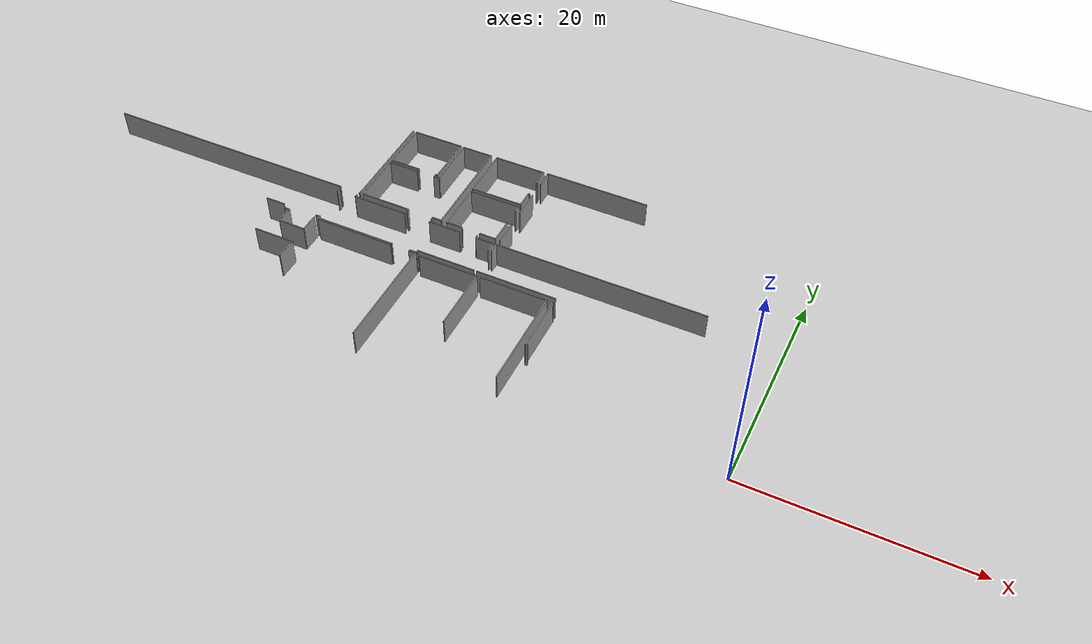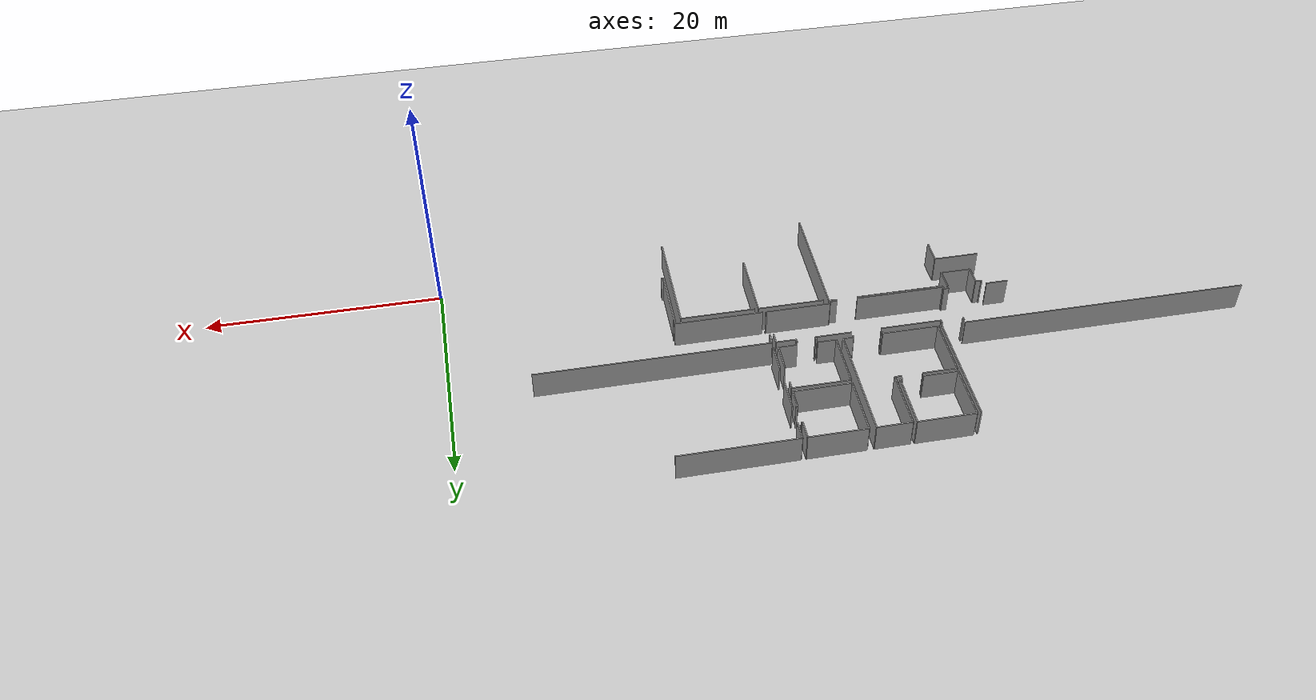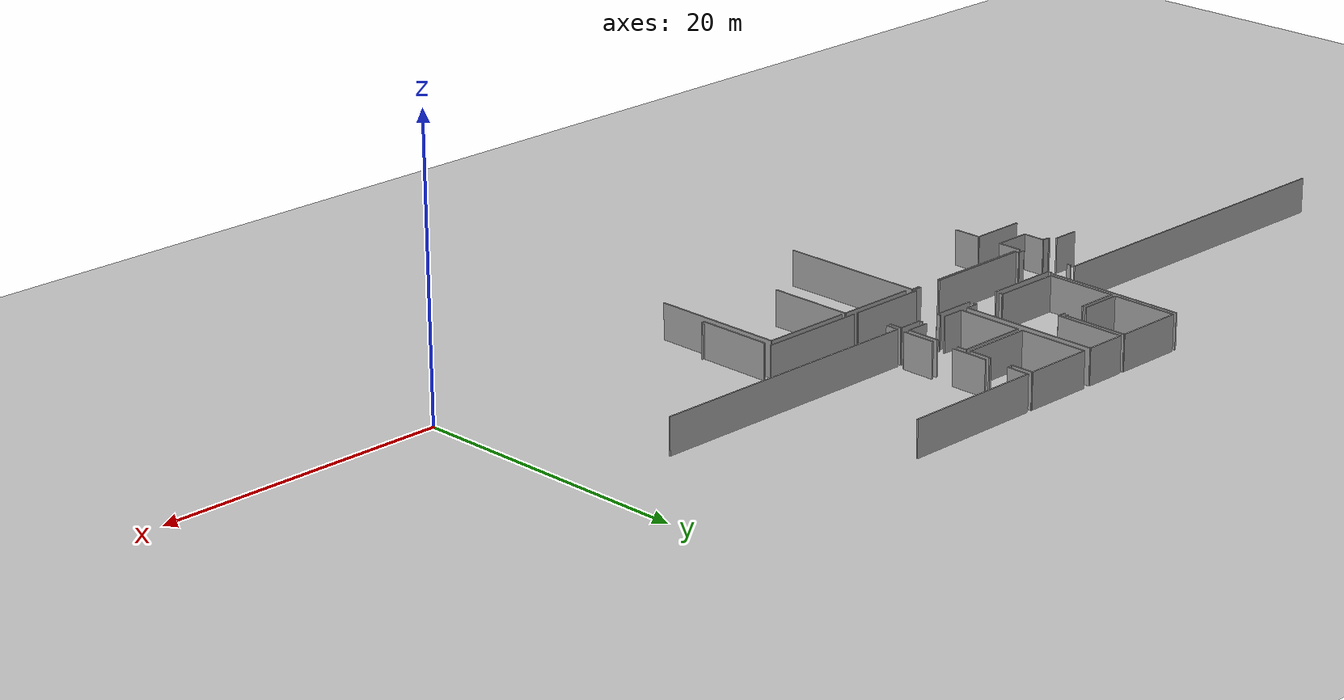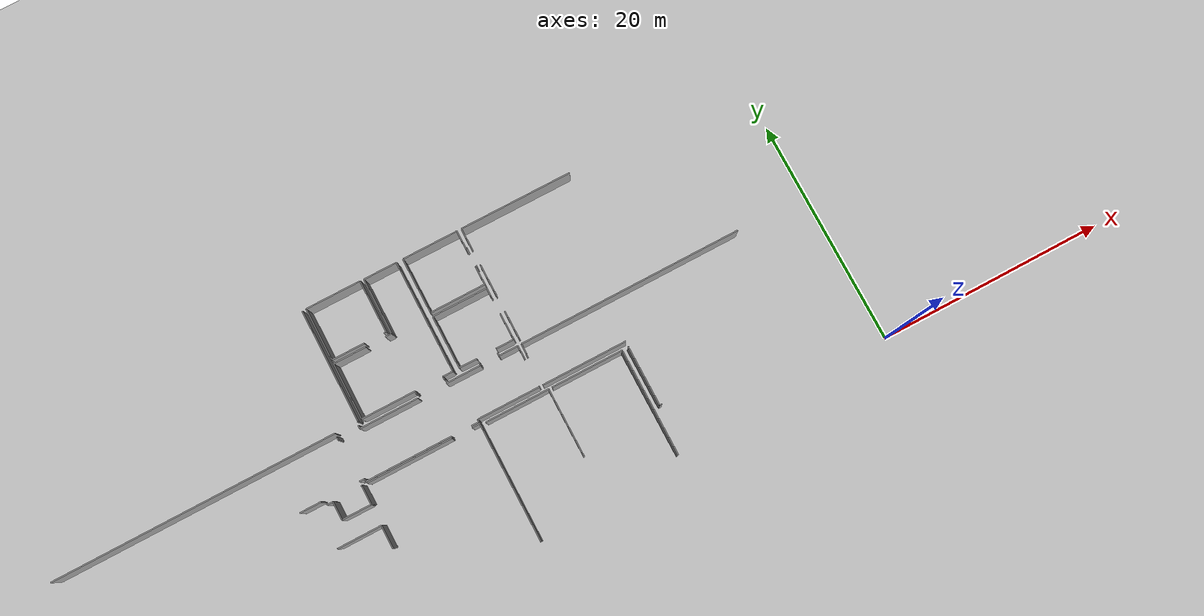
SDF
<sdf version="1.6">
 <world name="default">
  <model name="ground_plane">
   <static>1</static>
   <link name="link">
    <collision name="collision">
     <geometry><plane><normal>0 0 1</normal><size>100 100</size></plane></geometry>
     <surface><friction><ode><mu>100</mu><mu2>50</mu2></ode></friction></surface>
    </collision>
    <visual name="visual">
     <cast_shadows>0</cast_shadows>
     <geometry><plane><normal>0 0 1</normal><size>100 100</size></plane></geometry>
     <material>
      <script><uri>file://media/materials/scripts/gazebo.material</uri><name>Gazebo/Grey</name></script>
     </material>
    </visual>
   </link>
  </model>
  <model name="0510032194_A_40_1_102">
   <static>1</static>
   <link name="Wall_2">
    <collision name="Wall_2_Collision">
     <geometry><box><size>0.305095087969 0.1 2.5</size></box></geometry>
     <pose>0.152547543985 0 1.25 0 0 0</pose>
    </collision>
    <visual name="Wall_2_Visual">
     <pose>0.152547543985 0 1.25 0 0 0</pose>
     <geometry><box><size>0.305095087969 0.1 2.5</size></box></geometry>
     <material>
      <script><uri>file://media/materials/scripts/gazebo.material</uri><name>Gazebo/Grey</name></script>
      <ambient>1 1 1 1</ambient>
     </material>
    </visual>
    <pose>24.7901200041 -10.6450218651 0 0 0 1.57079632679</pose>
   </link>
   <link name="Wall_3">
    <collision name="Wall_3_Collision">
     <geometry><box><size>0.296577850097 0.1 2.5</size></box></geometry>
     <pose>0.148288925048 0 1.25 0 0 0</pose>
    </collision>
    <visual name="Wall_3_Visual">
     <pose>0.148288925048 0 1.25 0 0 0</pose>
     <geometry><box><size>0.296577850097 0.1 2.5</size></box></geometry>
     <material>
      <script><uri>file://media/materials/scripts/gazebo.material</uri><name>Gazebo/Grey</name></script>
      <ambient>1 1 1 1</ambient>
     </material>
    </visual>
    <pose>26.7179395912 -10.3399267772 0 0 0 -1.57079632679</pose>
   </link>
   <link name="Wall_4">
    <collision name="Wall_4_Collision">
     <geometry><box><size>5.16246313434 0.1 2.5</size></box></geometry>
     <pose>2.58123156717 0 1.25 0 0 0</pose>
    </collision>
    <visual name="Wall_4_Visual">
     <pose>2.58123156717 0 1.25 0 0 0</pose>
     <geometry><box><size>5.16246313434 0.1 2.5</size></box></geometry>
     <material>
      <script><uri>file://media/materials/scripts/gazebo.material</uri><name>Gazebo/Grey</name></script>
      <ambient>1 1 1 1</ambient>
     </material>
    </visual>
    <pose>26.7179395912 -10.6365046273 0 0 0 0.0</pose>
   </link>
   <link name="Wall_5">
    <collision name="Wall_5_Collision">
     <geometry><box><size>3.06912946202 0.1 2.5</size></box></geometry>
     <pose>1.53456473101 0 1.25 0 0 0</pose>
    </collision>
    <visual name="Wall_5_Visual">
     <pose>1.53456473101 0 1.25 0 0 0</pose>
     <geometry><box><size>3.06912946202 0.1 2.5</size></box></geometry>
     <material>
      <script><uri>file://media/materials/scripts/gazebo.material</uri><name>Gazebo/Grey</name></script>
      <ambient>1 1 1 1</ambient>
     </material>
    </visual>
    <pose>34.4265483576 -10.6365046273 0 0 0 0.0</pose>
   </link>
   <link name="Wall_6">
    <collision name="Wall_6_Collision">
     <geometry><box><size>0.26530560358 0.1 2.5</size></box></geometry>
     <pose>0.13265280179 0 1.25 0 0 0</pose>
    </collision>
    <visual name="Wall_6_Visual">
     <pose>0.13265280179 0 1.25 0 0 0</pose>
     <geometry><box><size>0.26530560358 0.1 2.5</size></box></geometry>
     <material>
      <script><uri>file://media/materials/scripts/gazebo.material</uri><name>Gazebo/Grey</name></script>
      <ambient>1 1 1 1</ambient>
     </material>
    </visual>
    <pose>37.4956778196 -10.6365046273 0 0 0 1.57079632679</pose>
   </link>
   <link name="Wall_7">
    <collision name="Wall_7_Collision">
     <geometry><box><size>0.273822841452 0.1 2.5</size></box></geometry>
     <pose>0.136911420726 0 1.25 0 0 0</pose>
    </collision>
    <visual name="Wall_7_Visual">
     <pose>0.136911420726 0 1.25 0 0 0</pose>
     <geometry><box><size>0.273822841452 0.1 2.5</size></box></geometry>
     <material>
      <script><uri>file://media/materials/scripts/gazebo.material</uri><name>Gazebo/Grey</name></script>
      <ambient>1 1 1 1</ambient>
     </material>
    </visual>
    <pose>39.136580901 -10.3711990237 0 0 0 -1.57079632679</pose>
   </link>
   <link name="Wall_8">
    <collision name="Wall_8_Collision">
     <geometry><box><size>1.70141360724 0.1 2.5</size></box></geometry>
     <pose>0.85070680362 0 1.25 0 0 0</pose>
    </collision>
    <visual name="Wall_8_Visual">
     <pose>0.85070680362 0 1.25 0 0 0</pose>
     <geometry><box><size>1.70141360724 0.1 2.5</size></box></geometry>
     <material>
      <script><uri>file://media/materials/scripts/gazebo.material</uri><name>Gazebo/Grey</name></script>
      <ambient>1 1 1 1</ambient>
     </material>
    </visual>
    <pose>39.136580901 -10.6450218651 0 0 0 0.0</pose>
   </link>
   <link name="Wall_9">
    <collision name="Wall_9_Collision">
     <geometry><box><size>0.956981592596 0.1 2.5</size></box></geometry>
     <pose>0.478490796298 0 1.25 0 0 0</pose>
    </collision>
    <visual name="Wall_9_Visual">
     <pose>0.478490796298 0 1.25 0 0 0</pose>
     <geometry><box><size>0.956981592596 0.1 2.5</size></box></geometry>
     <material>
      <script><uri>file://media/materials/scripts/gazebo.material</uri><name>Gazebo/Grey</name></script>
      <ambient>1 1 1 1</ambient>
     </material>
    </visual>
    <pose>40.8379945083 -10.6450218651 0 0 0 -1.57079632679</pose>
   </link>
   <link name="Wall_10">
    <collision name="Wall_10_Collision">
     <geometry><box><size>0.0672480423065 0.1 2.5</size></box></geometry>
     <pose>0.0336240211533 0 1.25 0 0 0</pose>
    </collision>
    <visual name="Wall_10_Visual">
     <pose>0.0336240211533 0 1.25 0 0 0</pose>
     <geometry><box><size>0.0672480423065 0.1 2.5</size></box></geometry>
     <material>
      <script><uri>file://media/materials/scripts/gazebo.material</uri><name>Gazebo/Grey</name></script>
      <ambient>1 1 1 1</ambient>
     </material>
    </visual>
    <pose>40.8379945083 -14.3127733143 0 0 0 -1.57079632679</pose>
   </link>
   <link name="Wall_11">
    <collision name="Wall_11_Collision">
     <geometry><box><size>5.53099257602 0.1 2.5</size></box></geometry>
     <pose>2.76549628801 0 1.25 0 0 0</pose>
    </collision>
    <visual name="Wall_11_Visual">
     <pose>2.76549628801 0 1.25 0 0 0</pose>
     <geometry><box><size>5.53099257602 0.1 2.5</size></box></geometry>
     <material>
      <script><uri>file://media/materials/scripts/gazebo.material</uri><name>Gazebo/Grey</name></script>
      <ambient>1 1 1 1</ambient>
     </material>
    </visual>
    <pose>40.8379945083 -14.3800213567 0 0 0 3.14159265359</pose>
   </link>
   <link name="Wall_12">
    <collision name="Wall_12_Collision">
     <geometry><box><size>0.224880504424 0.1 2.5</size></box></geometry>
     <pose>0.112440252212 0 1.25 0 0 0</pose>
    </collision>
    <visual name="Wall_12_Visual">
     <pose>0.112440252212 0 1.25 0 0 0</pose>
     <geometry><box><size>0.224880504424 0.1 2.5</size></box></geometry>
     <material>
      <script><uri>file://media/materials/scripts/gazebo.material</uri><name>Gazebo/Grey</name></script>
      <ambient>1 1 1 1</ambient>
     </material>
    </visual>
    <pose>35.3070019323 -14.3800213567 0 0 0 -1.57079632679</pose>
   </link>
   <link name="Wall_13">
    <collision name="Wall_13_Collision">
     <geometry><box><size>0.674260144412 0.1 2.5</size></box></geometry>
     <pose>0.337130072206 0 1.25 0 0 0</pose>
    </collision>
    <visual name="Wall_13_Visual">
     <pose>0.337130072206 0 1.25 0 0 0</pose>
     <geometry><box><size>0.674260144412 0.1 2.5</size></box></geometry>
     <material>
      <script><uri>file://media/materials/scripts/gazebo.material</uri><name>Gazebo/Grey</name></script>
      <ambient>1 1 1 1</ambient>
     </material>
    </visual>
    <pose>35.3070019323 -14.6049018611 0 0 0 3.14159265359</pose>
   </link>
   <link name="Wall_14">
    <collision name="Wall_14_Collision">
     <geometry><box><size>7.59521509204 0.1 2.5</size></box></geometry>
     <pose>3.79760754602 0 1.25 0 0 0</pose>
    </collision>
    <visual name="Wall_14_Visual">
     <pose>3.79760754602 0 1.25 0 0 0</pose>
     <geometry><box><size>7.59521509204 0.1 2.5</size></box></geometry>
     <material>
      <script><uri>file://media/materials/scripts/gazebo.material</uri><name>Gazebo/Grey</name></script>
      <ambient>1 1 1 1</ambient>
     </material>
    </visual>
    <pose>32.859503712 -14.6049018611 0 0 0 3.14159265359</pose>
   </link>
   <link name="Wall_15">
    <collision name="Wall_15_Collision">
     <geometry><box><size>0.237084307943 0.1 2.5</size></box></geometry>
     <pose>0.118542153971 0 1.25 0 0 0</pose>
    </collision>
    <visual name="Wall_15_Visual">
     <pose>0.118542153971 0 1.25 0 0 0</pose>
     <geometry><box><size>0.237084307943 0.1 2.5</size></box></geometry>
     <material>
      <script><uri>file://media/materials/scripts/gazebo.material</uri><name>Gazebo/Grey</name></script>
      <ambient>1 1 1 1</ambient>
     </material>
    </visual>
    <pose>25.26428862 -14.6049018611 0 0 0 1.57079632679</pose>
   </link>
   <link name="Wall_16">
    <collision name="Wall_16_Collision">
     <geometry><box><size>0.444930336622 0.1 2.5</size></box></geometry>
     <pose>0.222465168311 0 1.25 0 0 0</pose>
    </collision>
    <visual name="Wall_16_Visual">
     <pose>0.222465168311 0 1.25 0 0 0</pose>
     <geometry><box><size>0.444930336622 0.1 2.5</size></box></geometry>
     <material>
      <script><uri>file://media/materials/scripts/gazebo.material</uri><name>Gazebo/Grey</name></script>
      <ambient>1 1 1 1</ambient>
     </material>
    </visual>
    <pose>25.26428862 -14.3678175531 0 0 0 3.14159265359</pose>
   </link>
   <link name="Wall_17">
    <collision name="Wall_17_Collision">
     <geometry><box><size>1.86069866775 0.1 2.5</size></box></geometry>
     <pose>0.930349333876 0 1.25 0 0 0</pose>
    </collision>
    <visual name="Wall_17_Visual">
     <pose>0.930349333876 0 1.25 0 0 0</pose>
     <geometry><box><size>1.86069866775 0.1 2.5</size></box></geometry>
     <material>
      <script><uri>file://media/materials/scripts/gazebo.material</uri><name>Gazebo/Grey</name></script>
      <ambient>1 1 1 1</ambient>
     </material>
    </visual>
    <pose>21.4400488152 -14.3678175531 0 0 0 3.14159265359</pose>
   </link>
   <link name="Wall_21">
    <collision name="Wall_21_Collision">
     <geometry><box><size>10.0469083698 0.1 2.5</size></box></geometry>
     <pose>5.02345418489 0 1.25 0 0 0</pose>
    </collision>
    <visual name="Wall_21_Visual">
     <pose>5.02345418489 0 1.25 0 0 0</pose>
     <geometry><box><size>10.0469083698 0.1 2.5</size></box></geometry>
     <material>
      <script><uri>file://media/materials/scripts/gazebo.material</uri><name>Gazebo/Grey</name></script>
      <ambient>1 1 1 1</ambient>
     </material>
    </visual>
    <pose>26.8495118479 -0.0 0 0 0 -1.57079632679</pose>
   </link>
   <link name="Wall_22">
    <collision name="Wall_22_Collision">
     <geometry><box><size>0.0683921488864 0.1 2.5</size></box></geometry>
     <pose>0.0341960744432 0 1.25 0 0 0</pose>
    </collision>
    <visual name="Wall_22_Visual">
     <pose>0.0341960744432 0 1.25 0 0 0</pose>
     <geometry><box><size>0.0683921488864 0.1 2.5</size></box></geometry>
     <material>
      <script><uri>file://media/materials/scripts/gazebo.material</uri><name>Gazebo/Grey</name></script>
      <ambient>1 1 1 1</ambient>
     </material>
    </visual>
    <pose>26.8495118479 -10.0469083698 0 0 0 3.14159265359</pose>
   </link>
   <link name="Wall_23">
    <collision name="Wall_23_Collision">
     <geometry><box><size>24.7980060116 0.1 2.5</size></box></geometry>
     <pose>12.3990030058 0 1.25 0 0 0</pose>
    </collision>
    <visual name="Wall_23_Visual">
     <pose>12.3990030058 0 1.25 0 0 0</pose>
     <geometry><box><size>24.7980060116 0.1 2.5</size></box></geometry>
     <material>
      <script><uri>file://media/materials/scripts/gazebo.material</uri><name>Gazebo/Grey</name></script>
      <ambient>1 1 1 1</ambient>
     </material>
    </visual>
    <pose>24.7980016272 -10.0469083698 0 0 0 -3.14099799838</pose>
   </link>
   <link name="Wall_24">
    <collision name="Wall_24_Collision">
     <geometry><box><size>4.68295535442 0.1 2.5</size></box></geometry>
     <pose>2.34147767721 0 1.25 0 0 0</pose>
    </collision>
    <visual name="Wall_24_Visual">
     <pose>2.34147767721 0 1.25 0 0 0</pose>
     <geometry><box><size>4.68295535442 0.1 2.5</size></box></geometry>
     <material>
      <script><uri>file://media/materials/scripts/gazebo.material</uri><name>Gazebo/Grey</name></script>
      <ambient>1 1 1 1</ambient>
     </material>
    </visual>
    <pose>27.19223533 -4.68537069053 0 0 0 1.57079632679</pose>
   </link>
   <link name="Wall_25">
    <collision name="Wall_25_Collision">
     <geometry><box><size>4.85228312824 0.1 2.5</size></box></geometry>
     <pose>2.42614156412 0 1.25 0 0 0</pose>
    </collision>
    <visual name="Wall_25_Visual">
     <pose>2.42614156412 0 1.25 0 0 0</pose>
     <geometry><box><size>4.85228312824 0.1 2.5</size></box></geometry>
     <material>
      <script><uri>file://media/materials/scripts/gazebo.material</uri><name>Gazebo/Grey</name></script>
      <ambient>1 1 1 1</ambient>
     </material>
    </visual>
    <pose>27.19223533 -0.00241533611309 0 0 0 0.0</pose>
   </link>
   <link name="Wall_26">
    <collision name="Wall_26_Collision">
     <geometry><box><size>4.68511644463 0.1 2.5</size></box></geometry>
     <pose>2.34255822231 0 1.25 0 0 0</pose>
    </collision>
    <visual name="Wall_26_Visual">
     <pose>2.34255822231 0 1.25 0 0 0</pose>
     <geometry><box><size>4.68511644463 0.1 2.5</size></box></geometry>
     <material>
      <script><uri>file://media/materials/scripts/gazebo.material</uri><name>Gazebo/Grey</name></script>
      <ambient>1 1 1 1</ambient>
     </material>
    </visual>
    <pose>32.0445184583 -0.00241533611309 0 0 0 -1.57079632679</pose>
   </link>
   <link name="Wall_27">
    <collision name="Wall_27_Collision">
     <geometry><box><size>0.218015864945 0.1 2.5</size></box></geometry>
     <pose>0.109007932472 0 1.25 0 0 0</pose>
    </collision>
    <visual name="Wall_27_Visual">
     <pose>0.109007932472 0 1.25 0 0 0</pose>
     <geometry><box><size>0.218015864945 0.1 2.5</size></box></geometry>
     <material>
      <script><uri>file://media/materials/scripts/gazebo.material</uri><name>Gazebo/Grey</name></script>
      <ambient>1 1 1 1</ambient>
     </material>
    </visual>
    <pose>32.0445184583 -4.68753178074 0 0 0 3.14159265359</pose>
   </link>
   <link name="Wall_28">
    <collision name="Wall_28_Collision">
     <geometry><box><size>2.89204799548 0.1 2.5</size></box></geometry>
     <pose>1.44602399774 0 1.25 0 0 0</pose>
    </collision>
    <visual name="Wall_28_Visual">
     <pose>1.44602399774 0 1.25 0 0 0</pose>
     <geometry><box><size>2.89204799548 0.1 2.5</size></box></geometry>
     <material>
      <script><uri>file://media/materials/scripts/gazebo.material</uri><name>Gazebo/Grey</name></script>
      <ambient>1 1 1 1</ambient>
     </material>
    </visual>
    <pose>30.0842825181 -4.68753178074 0 0 0 3.14084540098</pose>
   </link>
   <link name="Wall_29">
    <collision name="Wall_29_Collision">
     <geometry><box><size>5.02046679548 0.1 2.5</size></box></geometry>
     <pose>2.51023339774 0 1.25 0 0 0</pose>
    </collision>
    <visual name="Wall_29_Visual">
     <pose>2.51023339774 0 1.25 0 0 0</pose>
     <geometry><box><size>5.02046679548 0.1 2.5</size></box></geometry>
     <material>
      <script><uri>file://media/materials/scripts/gazebo.material</uri><name>Gazebo/Grey</name></script>
      <ambient>1 1 1 1</ambient>
     </material>
    </visual>
    <pose>27.1711329198 -10.0284755415 0 0 0 1.57079632679</pose>
   </link>
   <link name="Wall_30">
    <collision name="Wall_30_Collision">
     <geometry><box><size>2.89141157327 0.1 2.5</size></box></geometry>
     <pose>1.44570578664 0 1.25 0 0 0</pose>
    </collision>
    <visual name="Wall_30_Visual">
     <pose>1.44570578664 0 1.25 0 0 0</pose>
     <geometry><box><size>2.89141157327 0.1 2.5</size></box></geometry>
     <material>
      <script><uri>file://media/materials/scripts/gazebo.material</uri><name>Gazebo/Grey</name></script>
      <ambient>1 1 1 1</ambient>
     </material>
    </visual>
    <pose>27.1711329198 -5.00800874606 0 0 0 0.0</pose>
   </link>
   <link name="Wall_31">
    <collision name="Wall_31_Collision">
     <geometry><box><size>0.566078511136 0.1 2.5</size></box></geometry>
     <pose>0.283039255568 0 1.25 0 0 0</pose>
    </collision>
    <visual name="Wall_31_Visual">
     <pose>0.283039255568 0 1.25 0 0 0</pose>
     <geometry><box><size>0.566078511136 0.1 2.5</size></box></geometry>
     <material>
      <script><uri>file://media/materials/scripts/gazebo.material</uri><name>Gazebo/Grey</name></script>
      <ambient>1 1 1 1</ambient>
     </material>
    </visual>
    <pose>31.8153157734 -5.00800874606 0 0 0 0.0</pose>
   </link>
   <link name="Wall_32">
    <collision name="Wall_32_Collision">
     <geometry><box><size>4.98550798332 0.1 2.5</size></box></geometry>
     <pose>2.49275399166 0 1.25 0 0 0</pose>
    </collision>
    <visual name="Wall_32_Visual">
     <pose>2.49275399166 0 1.25 0 0 0</pose>
     <geometry><box><size>4.98550798332 0.1 2.5</size></box></geometry>
     <material>
      <script><uri>file://media/materials/scripts/gazebo.material</uri><name>Gazebo/Grey</name></script>
      <ambient>1 1 1 1</ambient>
     </material>
    </visual>
    <pose>32.3813942846 -5.00800874606 0 0 0 1.57079632679</pose>
   </link>
   <link name="Wall_33">
    <collision name="Wall_33_Collision">
     <geometry><box><size>2.93526899217 0.1 2.5</size></box></geometry>
     <pose>1.46763449608 0 1.25 0 0 0</pose>
    </collision>
    <visual name="Wall_33_Visual">
     <pose>1.46763449608 0 1.25 0 0 0</pose>
     <geometry><box><size>2.93526899217 0.1 2.5</size></box></geometry>
     <material>
      <script><uri>file://media/materials/scripts/gazebo.material</uri><name>Gazebo/Grey</name></script>
      <ambient>1 1 1 1</ambient>
     </material>
    </visual>
    <pose>32.3813942846 -0.0225007627377 0 0 0 0.0</pose>
   </link>
   <link name="Wall_34">
    <collision name="Wall_34_Collision">
     <geometry><box><size>10.0123309265 0.1 2.5</size></box></geometry>
     <pose>5.00616546324 0 1.25 0 0 0</pose>
    </collision>
    <visual name="Wall_34_Visual">
     <pose>5.00616546324 0 1.25 0 0 0</pose>
     <geometry><box><size>10.0123309265 0.1 2.5</size></box></geometry>
     <material>
      <script><uri>file://media/materials/scripts/gazebo.material</uri><name>Gazebo/Grey</name></script>
      <ambient>1 1 1 1</ambient>
     </material>
    </visual>
    <pose>35.3166632767 -0.0225007627377 0 0 0 -1.57079632679</pose>
   </link>
   <link name="Wall_35">
    <collision name="Wall_35_Collision">
     <geometry><box><size>0.88591986169 0.1 2.5</size></box></geometry>
     <pose>0.442959930845 0 1.25 0 0 0</pose>
    </collision>
    <visual name="Wall_35_Visual">
     <pose>0.442959930845 0 1.25 0 0 0</pose>
     <geometry><box><size>0.88591986169 0.1 2.5</size></box></geometry>
     <material>
      <script><uri>file://media/materials/scripts/gazebo.material</uri><name>Gazebo/Grey</name></script>
      <ambient>1 1 1 1</ambient>
     </material>
    </visual>
    <pose>35.3166632767 -10.0348316892 0 0 0 3.14159265359</pose>
   </link>
   <link name="Wall_36">
    <collision name="Wall_36_Collision">
     <geometry><box><size>0.242423471982 0.1 2.5</size></box></geometry>
     <pose>0.121211735991 0 1.25 0 0 0</pose>
    </collision>
    <visual name="Wall_36_Visual">
     <pose>0.121211735991 0 1.25 0 0 0</pose>
     <geometry><box><size>0.242423471982 0.1 2.5</size></box></geometry>
     <material>
      <script><uri>file://media/materials/scripts/gazebo.material</uri><name>Gazebo/Grey</name></script>
      <ambient>1 1 1 1</ambient>
     </material>
    </visual>
    <pose>34.430743415 -10.0348316892 0 0 0 -1.57079632679</pose>
   </link>
   <link name="Wall_37">
    <collision name="Wall_37_Collision">
     <geometry><box><size>0.242042103122 0.1 2.5</size></box></geometry>
     <pose>0.121021051561 0 1.25 0 0 0</pose>
    </collision>
    <visual name="Wall_37_Visual">
     <pose>0.121021051561 0 1.25 0 0 0</pose>
     <geometry><box><size>0.242042103122 0.1 2.5</size></box></geometry>
     <material>
      <script><uri>file://media/materials/scripts/gazebo.material</uri><name>Gazebo/Grey</name></script>
      <ambient>1 1 1 1</ambient>
     </material>
    </visual>
    <pose>31.9369724397 -10.2772551612 0 0 0 1.57079632679</pose>
   </link>
   <link name="Wall_38">
    <collision name="Wall_38_Collision">
     <geometry><box><size>4.76584428243 0.1 2.5</size></box></geometry>
     <pose>2.38292214121 0 1.25 0 0 0</pose>
    </collision>
    <visual name="Wall_38_Visual">
     <pose>2.38292214121 0 1.25 0 0 0</pose>
     <geometry><box><size>4.76584428243 0.1 2.5</size></box></geometry>
     <material>
      <script><uri>file://media/materials/scripts/gazebo.material</uri><name>Gazebo/Grey</name></script>
      <ambient>1 1 1 1</ambient>
     </material>
    </visual>
    <pose>31.9369724397 -10.0352130581 0 0 0 3.14017894421</pose>
   </link>
   <link name="Wall_39">
    <collision name="Wall_39_Collision">
     <geometry><box><size>4.69846435472 0.1 2.5</size></box></geometry>
     <pose>2.34923217736 0 1.25 0 0 0</pose>
    </collision>
    <visual name="Wall_39_Visual">
     <pose>2.34923217736 0 1.25 0 0 0</pose>
     <geometry><box><size>4.69846435472 0.1 2.5</size></box></geometry>
     <material>
      <script><uri>file://media/materials/scripts/gazebo.material</uri><name>Gazebo/Grey</name></script>
      <ambient>1 1 1 1</ambient>
     </material>
    </visual>
    <pose>35.9028272145 -10.019068443 0 0 0 1.57079632679</pose>
   </link>
   <link name="Wall_40">
    <collision name="Wall_40_Collision">
     <geometry><box><size>4.8869876945 0.1 2.5</size></box></geometry>
     <pose>2.44349384725 0 1.25 0 0 0</pose>
    </collision>
    <visual name="Wall_40_Visual">
     <pose>2.44349384725 0 1.25 0 0 0</pose>
     <geometry><box><size>4.8869876945 0.1 2.5</size></box></geometry>
     <material>
      <script><uri>file://media/materials/scripts/gazebo.material</uri><name>Gazebo/Grey</name></script>
      <ambient>1 1 1 1</ambient>
     </material>
    </visual>
    <pose>35.9028272145 -5.32060408827 0 0 0 0.0</pose>
   </link>
   <link name="Wall_41">
    <collision name="Wall_41_Collision">
     <geometry><box><size>0.69523543171 0.1 2.5</size></box></geometry>
     <pose>0.347617715855 0 1.25 0 0 0</pose>
    </collision>
    <visual name="Wall_41_Visual">
     <pose>0.347617715855 0 1.25 0 0 0</pose>
     <geometry><box><size>0.69523543171 0.1 2.5</size></box></geometry>
     <material>
      <script><uri>file://media/materials/scripts/gazebo.material</uri><name>Gazebo/Grey</name></script>
      <ambient>1 1 1 1</ambient>
     </material>
    </visual>
    <pose>40.789814909 -5.32060408827 0 0 0 -1.57079632679</pose>
   </link>
   <link name="Wall_42">
    <collision name="Wall_42_Collision">
     <geometry><box><size>2.37427539917 0.1 2.5</size></box></geometry>
     <pose>1.18713769958 0 1.25 0 0 0</pose>
    </collision>
    <visual name="Wall_42_Visual">
     <pose>1.18713769958 0 1.25 0 0 0</pose>
     <geometry><box><size>2.37427539917 0.1 2.5</size></box></geometry>
     <material>
      <script><uri>file://media/materials/scripts/gazebo.material</uri><name>Gazebo/Grey</name></script>
      <ambient>1 1 1 1</ambient>
     </material>
    </visual>
    <pose>40.789814909 -7.6609376589 0 0 0 -1.57079632679</pose>
   </link>
   <link name="Wall_43">
    <collision name="Wall_43_Collision">
     <geometry><box><size>1.59564731008 0.1 2.5</size></box></geometry>
     <pose>0.797823655039 0 1.25 0 0 0</pose>
    </collision>
    <visual name="Wall_43_Visual">
     <pose>0.797823655039 0 1.25 0 0 0</pose>
     <geometry><box><size>1.59564731008 0.1 2.5</size></box></geometry>
     <material>
      <script><uri>file://media/materials/scripts/gazebo.material</uri><name>Gazebo/Grey</name></script>
      <ambient>1 1 1 1</ambient>
     </material>
    </visual>
    <pose>40.789814909 -10.0352130581 0 0 0 3.14159265359</pose>
   </link>
   <link name="Wall_44">
    <collision name="Wall_44_Collision">
     <geometry><box><size>1.56128046466 0.1 2.5</size></box></geometry>
     <pose>0.780640232331 0 1.25 0 0 0</pose>
    </collision>
    <visual name="Wall_44_Visual">
     <pose>0.780640232331 0 1.25 0 0 0</pose>
     <geometry><box><size>1.56128046466 0.1 2.5</size></box></geometry>
     <material>
      <script><uri>file://media/materials/scripts/gazebo.material</uri><name>Gazebo/Grey</name></script>
      <ambient>1 1 1 1</ambient>
     </material>
    </visual>
    <pose>37.4640242042 -10.0352130581 0 0 0 3.13125184477</pose>
   </link>
   <link name="Wall_70">
    <collision name="Wall_70_Collision">
     <geometry><box><size>3.85398657582 0.1 2.5</size></box></geometry>
     <pose>1.92699328791 0 1.25 0 0 0</pose>
    </collision>
    <visual name="Wall_70_Visual">
     <pose>1.92699328791 0 1.25 0 0 0</pose>
     <geometry><box><size>3.85398657582 0.1 2.5</size></box></geometry>
     <material>
      <script><uri>file://media/materials/scripts/gazebo.material</uri><name>Gazebo/Grey</name></script>
      <ambient>1 1 1 1</ambient>
     </material>
    </visual>
    <pose>20.958507068 -18.2512966541 0 0 0 0.0</pose>
   </link>
   <link name="Wall_71">
    <collision name="Wall_71_Collision">
     <geometry><box><size>2.01222922811 0.1 2.5</size></box></geometry>
     <pose>1.00611461405 0 1.25 0 0 0</pose>
    </collision>
    <visual name="Wall_71_Visual">
     <pose>1.00611461405 0 1.25 0 0 0</pose>
     <geometry><box><size>2.01222922811 0.1 2.5</size></box></geometry>
     <material>
      <script><uri>file://media/materials/scripts/gazebo.material</uri><name>Gazebo/Grey</name></script>
      <ambient>1 1 1 1</ambient>
     </material>
    </visual>
    <pose>24.8124936439 -18.2512966541 0 0 0 -1.57079632679</pose>
   </link>
   <link name="Wall_73">
    <collision name="Wall_73_Collision">
     <geometry><box><size>1.60289331842 0.1 2.5</size></box></geometry>
     <pose>0.801446659209 0 1.25 0 0 0</pose>
    </collision>
    <visual name="Wall_73_Visual">
     <pose>0.801446659209 0 1.25 0 0 0</pose>
     <geometry><box><size>1.60289331842 0.1 2.5</size></box></geometry>
     <material>
      <script><uri>file://media/materials/scripts/gazebo.material</uri><name>Gazebo/Grey</name></script>
      <ambient>1 1 1 1</ambient>
     </material>
    </visual>
    <pose>22.2741025119 -16.4067426014 0 0 0 1.57079632679</pose>
   </link>
   <link name="Wall_74">
    <collision name="Wall_74_Collision">
     <geometry><box><size>0.508491813282 0.1 2.5</size></box></geometry>
     <pose>0.254245906641 0 1.25 0 0 0</pose>
    </collision>
    <visual name="Wall_74_Visual">
     <pose>0.254245906641 0 1.25 0 0 0</pose>
     <geometry><box><size>0.508491813282 0.1 2.5</size></box></geometry>
     <material>
      <script><uri>file://media/materials/scripts/gazebo.material</uri><name>Gazebo/Grey</name></script>
      <ambient>1 1 1 1</ambient>
     </material>
    </visual>
    <pose>22.2741025119 -14.803849283 0 0 0 3.14159265359</pose>
   </link>
   <link name="Wall_75">
    <collision name="Wall_75_Collision">
     <geometry><box><size>0.121529543374 0.1 2.5</size></box></geometry>
     <pose>0.0607647716872 0 1.25 0 0 0</pose>
    </collision>
    <visual name="Wall_75_Visual">
     <pose>0.0607647716872 0 1.25 0 0 0</pose>
     <geometry><box><size>0.121529543374 0.1 2.5</size></box></geometry>
     <material>
      <script><uri>file://media/materials/scripts/gazebo.material</uri><name>Gazebo/Grey</name></script>
      <ambient>1 1 1 1</ambient>
     </material>
    </visual>
    <pose>21.7656106987 -14.803849283 0 0 0 1.57079632679</pose>
   </link>
   <link name="Wall_76">
    <collision name="Wall_76_Collision">
     <geometry><box><size>1.73001627174 0.1 2.5</size></box></geometry>
     <pose>0.865008135869 0 1.25 0 0 0</pose>
    </collision>
    <visual name="Wall_76_Visual">
     <pose>0.865008135869 0 1.25 0 0 0</pose>
     <geometry><box><size>1.73001627174 0.1 2.5</size></box></geometry>
     <material>
      <script><uri>file://media/materials/scripts/gazebo.material</uri><name>Gazebo/Grey</name></script>
      <ambient>1 1 1 1</ambient>
     </material>
    </visual>
    <pose>24.8276212753 -14.6823197397 0 0 0 -1.57079632679</pose>
   </link>
   <link name="Wall_77">
    <collision name="Wall_77_Collision">
     <geometry><box><size>2.55352488944 0.1 2.5</size></box></geometry>
     <pose>1.27676244472 0 1.25 0 0 0</pose>
    </collision>
    <visual name="Wall_77_Visual">
     <pose>1.27676244472 0 1.25 0 0 0</pose>
     <geometry><box><size>2.55352488944 0.1 2.5</size></box></geometry>
     <material>
      <script><uri>file://media/materials/scripts/gazebo.material</uri><name>Gazebo/Grey</name></script>
      <ambient>1 1 1 1</ambient>
     </material>
    </visual>
    <pose>24.8276212753 -16.4123360114 0 0 0 3.13940218564</pose>
   </link>
   <link name="Wall_79">
    <collision name="Wall_79_Collision">
     <geometry><box><size>7.519068443 0.1 2.5</size></box></geometry>
     <pose>3.7595342215 0 1.25 0 0 0</pose>
    </collision>
    <visual name="Wall_79_Visual">
     <pose>3.7595342215 0 1.25 0 0 0</pose>
     <geometry><box><size>7.519068443 0.1 2.5</size></box></geometry>
     <material>
      <script><uri>file://media/materials/scripts/gazebo.material</uri><name>Gazebo/Grey</name></script>
      <ambient>1 1 1 1</ambient>
     </material>
    </visual>
    <pose>25.2897132106 -14.73571138 0 0 0 0.0</pose>
   </link>
   <link name="Wall_80">
    <collision name="Wall_80_Collision">
     <geometry><box><size>0.688879284044 0.1 2.5</size></box></geometry>
     <pose>0.344439642022 0 1.25 0 0 0</pose>
    </collision>
    <visual name="Wall_80_Visual">
     <pose>0.344439642022 0 1.25 0 0 0</pose>
     <geometry><box><size>0.688879284044 0.1 2.5</size></box></geometry>
     <material>
      <script><uri>file://media/materials/scripts/gazebo.material</uri><name>Gazebo/Grey</name></script>
      <ambient>1 1 1 1</ambient>
     </material>
    </visual>
    <pose>34.6165971728 -14.73571138 0 0 0 0.0</pose>
   </link>
   <link name="Wall_81">
    <collision name="Wall_81_Collision">
     <geometry><box><size>10.536458863 0.1 2.5</size></box></geometry>
     <pose>5.26822943151 0 1.25 0 0 0</pose>
    </collision>
    <visual name="Wall_81_Visual">
     <pose>5.26822943151 0 1.25 0 0 0</pose>
     <geometry><box><size>10.536458863 0.1 2.5</size></box></geometry>
     <material>
      <script><uri>file://media/materials/scripts/gazebo.material</uri><name>Gazebo/Grey</name></script>
      <ambient>1 1 1 1</ambient>
     </material>
    </visual>
    <pose>35.3054764568 -14.73571138 0 0 0 -1.57079632679</pose>
   </link>
   <link name="Wall_84">
    <collision name="Wall_84_Collision">
     <geometry><box><size>0.0288569104037 0.1 2.5</size></box></geometry>
     <pose>0.0144284552019 0 1.25 0 0 0</pose>
    </collision>
    <visual name="Wall_84_Visual">
     <pose>0.0144284552019 0 1.25 0 0 0</pose>
     <geometry><box><size>0.0288569104037 0.1 2.5</size></box></geometry>
     <material>
      <script><uri>file://media/materials/scripts/gazebo.material</uri><name>Gazebo/Grey</name></script>
      <ambient>1 1 1 1</ambient>
     </material>
    </visual>
    <pose>41.2366520899 -10.0329248449 0 0 0 3.14159265359</pose>
   </link>
   <link name="Wall_85">
    <collision name="Wall_85_Collision">
     <geometry><box><size>2.35902064477 0.1 2.5</size></box></geometry>
     <pose>1.17951032238 0 1.25 0 0 0</pose>
    </collision>
    <visual name="Wall_85_Visual">
     <pose>1.17951032238 0 1.25 0 0 0</pose>
     <geometry><box><size>2.35902064477 0.1 2.5</size></box></geometry>
     <material>
      <script><uri>file://media/materials/scripts/gazebo.material</uri><name>Gazebo/Grey</name></script>
      <ambient>1 1 1 1</ambient>
     </material>
    </visual>
    <pose>41.2077951795 -10.0329248449 0 0 0 1.57079632679</pose>
   </link>
   <link name="Wall_86">
    <collision name="Wall_86_Collision">
     <geometry><box><size>2.6492423472 0.1 2.5</size></box></geometry>
     <pose>1.3246211736 0 1.25 0 0 0</pose>
    </collision>
    <visual name="Wall_86_Visual">
     <pose>1.3246211736 0 1.25 0 0 0</pose>
     <geometry><box><size>2.6492423472 0.1 2.5</size></box></geometry>
     <material>
      <script><uri>file://media/materials/scripts/gazebo.material</uri><name>Gazebo/Grey</name></script>
      <ambient>1 1 1 1</ambient>
     </material>
    </visual>
    <pose>41.2077951795 -6.01583951998 0 0 0 1.57079632679</pose>
   </link>
   <link name="Wall_87">
    <collision name="Wall_87_Collision">
     <geometry><box><size>1.60480016272 0.1 2.5</size></box></geometry>
     <pose>0.802400081359 0 1.25 0 0 0</pose>
    </collision>
    <visual name="Wall_87_Visual">
     <pose>0.802400081359 0 1.25 0 0 0</pose>
     <geometry><box><size>1.60480016272 0.1 2.5</size></box></geometry>
     <material>
      <script><uri>file://media/materials/scripts/gazebo.material</uri><name>Gazebo/Grey</name></script>
      <ambient>1 1 1 1</ambient>
     </material>
    </visual>
    <pose>41.2077951795 -1.60937658904 0 0 0 1.57079632679</pose>
   </link>
   <link name="Wall_88">
    <collision name="Wall_88_Collision">
     <geometry><box><size>9.91533611309 0.1 2.5</size></box></geometry>
     <pose>4.95766805654 0 1.25 0 0 0</pose>
    </collision>
    <visual name="Wall_88_Visual">
     <pose>4.95766805654 0 1.25 0 0 0</pose>
     <geometry><box><size>9.91533611309 0.1 2.5</size></box></geometry>
     <material>
      <script><uri>file://media/materials/scripts/gazebo.material</uri><name>Gazebo/Grey</name></script>
      <ambient>1 1 1 1</ambient>
     </material>
    </visual>
    <pose>41.2077951795 -0.00457642631954 0 0 0 0.0</pose>
   </link>
   <link name="Wall_92">
    <collision name="Wall_92_Collision">
     <geometry><box><size>4.95982914675 0.1 2.5</size></box></geometry>
     <pose>2.47991457338 0 1.25 0 0 0</pose>
    </collision>
    <visual name="Wall_92_Visual">
     <pose>2.47991457338 0 1.25 0 0 0</pose>
     <geometry><box><size>4.95982914675 0.1 2.5</size></box></geometry>
     <material>
      <script><uri>file://media/materials/scripts/gazebo.material</uri><name>Gazebo/Grey</name></script>
      <ambient>1 1 1 1</ambient>
     </material>
    </visual>
    <pose>35.9028272145 -4.97546527001 0 0 0 1.57079632679</pose>
   </link>
   <link name="Wall_93">
    <collision name="Wall_93_Collision">
     <geometry><box><size>4.88876741584 0.1 2.5</size></box></geometry>
     <pose>2.44438370792 0 1.25 0 0 0</pose>
    </collision>
    <visual name="Wall_93_Visual">
     <pose>2.44438370792 0 1.25 0 0 0</pose>
     <geometry><box><size>4.88876741584 0.1 2.5</size></box></geometry>
     <material>
      <script><uri>file://media/materials/scripts/gazebo.material</uri><name>Gazebo/Grey</name></script>
      <ambient>1 1 1 1</ambient>
     </material>
    </visual>
    <pose>35.9028272145 -0.0156361232584 0 0 0 0.0</pose>
   </link>
   <link name="Wall_94">
    <collision name="Wall_94_Collision">
     <geometry><box><size>1.60340181023 0.1 2.5</size></box></geometry>
     <pose>0.801700905115 0 1.25 0 0 0</pose>
    </collision>
    <visual name="Wall_94_Visual">
     <pose>0.801700905115 0 1.25 0 0 0</pose>
     <geometry><box><size>1.60340181023 0.1 2.5</size></box></geometry>
     <material>
      <script><uri>file://media/materials/scripts/gazebo.material</uri><name>Gazebo/Grey</name></script>
      <ambient>1 1 1 1</ambient>
     </material>
    </visual>
    <pose>40.7915946303 -0.0156361232584 0 0 0 -1.57079632679</pose>
   </link>
   <link name="Wall_95">
    <collision name="Wall_95_Collision">
     <geometry><box><size>0.138945387979 0.1 2.5</size></box></geometry>
     <pose>0.0694726939896 0 1.25 0 0 0</pose>
    </collision>
    <visual name="Wall_95_Visual">
     <pose>0.0694726939896 0 1.25 0 0 0</pose>
     <geometry><box><size>0.138945387979 0.1 2.5</size></box></geometry>
     <material>
      <script><uri>file://media/materials/scripts/gazebo.material</uri><name>Gazebo/Grey</name></script>
      <ambient>1 1 1 1</ambient>
     </material>
    </visual>
    <pose>40.7915946303 -1.61903793349 0 0 0 0.0</pose>
   </link>
   <link name="Wall_96">
    <collision name="Wall_96_Collision">
     <geometry><box><size>0.13284348622 0.1 2.5</size></box></geometry>
     <pose>0.0664217431099 0 1.25 0 0 0</pose>
    </collision>
    <visual name="Wall_96_Visual">
     <pose>0.0664217431099 0 1.25 0 0 0</pose>
     <geometry><box><size>0.13284348622 0.1 2.5</size></box></geometry>
     <material>
      <script><uri>file://media/materials/scripts/gazebo.material</uri><name>Gazebo/Grey</name></script>
      <ambient>1 1 1 1</ambient>
     </material>
    </visual>
    <pose>40.9305400183 -3.32553645886 0 0 0 3.14159265359</pose>
   </link>
   <link name="Wall_97">
    <collision name="Wall_97_Collision">
     <geometry><box><size>1.63441981084 0.1 2.5</size></box></geometry>
     <pose>0.817209905421 0 1.25 0 0 0</pose>
    </collision>
    <visual name="Wall_97_Visual">
     <pose>0.817209905421 0 1.25 0 0 0</pose>
     <geometry><box><size>1.63441981084 0.1 2.5</size></box></geometry>
     <material>
      <script><uri>file://media/materials/scripts/gazebo.material</uri><name>Gazebo/Grey</name></script>
      <ambient>1 1 1 1</ambient>
     </material>
    </visual>
    <pose>40.7976965321 -3.32553645886 0 0 0 -1.57079632679</pose>
   </link>
   <link name="Wall_98">
    <collision name="Wall_98_Collision">
     <geometry><box><size>4.89489388705 0.1 2.5</size></box></geometry>
     <pose>2.44744694353 0 1.25 0 0 0</pose>
    </collision>
    <visual name="Wall_98_Visual">
     <pose>2.44744694353 0 1.25 0 0 0</pose>
     <geometry><box><size>4.89489388705 0.1 2.5</size></box></geometry>
     <material>
      <script><uri>file://media/materials/scripts/gazebo.material</uri><name>Gazebo/Grey</name></script>
      <ambient>1 1 1 1</ambient>
     </material>
    </visual>
    <pose>40.7976965321 -4.9599562697 0 0 0 -3.13842424451</pose>
   </link>
   <link name="Wall_201">
    <collision name="Wall_201_Collision">
     <geometry><box><size>5.30878165362 0.1 2.5</size></box></geometry>
     <pose>2.65439082681 0 1.25 0 0 0</pose>
    </collision>
    <visual name="Wall_201_Visual">
     <pose>2.65439082681 0 1.25 0 0 0</pose>
     <geometry><box><size>5.30878165362 0.1 2.5</size></box></geometry>
     <material>
      <script><uri>file://media/materials/scripts/gazebo.material</uri><name>Gazebo/Grey</name></script>
      <ambient>1 1 1 1</ambient>
     </material>
    </visual>
    <pose>48.6040628496 -20.1900488152 0 0 0 1.57079632679</pose>
   </link>
   <link name="Wall_202">
    <collision name="Wall_202_Collision">
     <geometry><box><size>0.0784348621987 0.1 2.5</size></box></geometry>
     <pose>0.0392174310994 0 1.25 0 0 0</pose>
    </collision>
    <visual name="Wall_202_Visual">
     <pose>0.0392174310994 0 1.25 0 0 0</pose>
     <geometry><box><size>0.0784348621987 0.1 2.5</size></box></geometry>
     <material>
      <script><uri>file://media/materials/scripts/gazebo.material</uri><name>Gazebo/Grey</name></script>
      <ambient>1 1 1 1</ambient>
     </material>
    </visual>
    <pose>48.6040628496 -14.8812671616 0 0 0 0.0</pose>
   </link>
   <link name="Wall_207">
    <collision name="Wall_207_Collision">
     <geometry><box><size>0.212104523806 0.1 2.5</size></box></geometry>
     <pose>0.106052261903 0 1.25 0 0 0</pose>
    </collision>
    <visual name="Wall_207_Visual">
     <pose>0.106052261903 0 1.25 0 0 0</pose>
     <geometry><box><size>0.212104523806 0.1 2.5</size></box></geometry>
     <material>
      <script><uri>file://media/materials/scripts/gazebo.material</uri><name>Gazebo/Grey</name></script>
      <ambient>1 1 1 1</ambient>
     </material>
    </visual>
    <pose>48.8157225669 -20.1763195363 0 0 0 -3.07681853166</pose>
   </link>
   <link name="Wall_208">
    <collision name="Wall_208_Collision">
     <geometry><box><size>19.7555425608 0.1 2.5</size></box></geometry>
     <pose>9.87777128038 0 1.25 0 0 0</pose>
    </collision>
    <visual name="Wall_208_Visual">
     <pose>9.87777128038 0 1.25 0 0 0</pose>
     <geometry><box><size>19.7555425608 0.1 2.5</size></box></geometry>
     <material>
      <script><uri>file://media/materials/scripts/gazebo.material</uri><name>Gazebo/Grey</name></script>
      <ambient>1 1 1 1</ambient>
     </material>
    </visual>
    <pose>41.1800823757 -10.6431150208 0 0 0 0.0</pose>
   </link>
   <link name="Wall_236">
    <collision name="Wall_236_Collision">
     <geometry><box><size>7.50788162311 0.1 2.5</size></box></geometry>
     <pose>3.75394081155 0 1.25 0 0 0</pose>
    </collision>
    <visual name="Wall_236_Visual">
     <pose>3.75394081155 0 1.25 0 0 0</pose>
     <geometry><box><size>7.50788162311 0.1 2.5</size></box></geometry>
     <material>
      <script><uri>file://media/materials/scripts/gazebo.material</uri><name>Gazebo/Grey</name></script>
      <ambient>1 1 1 1</ambient>
     </material>
    </visual>
    <pose>48.6421997356 -14.3800213567 0 0 0 3.14159265359</pose>
   </link>
   <link name="Wall_237">
    <collision name="Wall_237_Collision">
     <geometry><box><size>0.941822381489 0.1 2.5</size></box></geometry>
     <pose>0.470911190744 0 1.25 0 0 0</pose>
    </collision>
    <visual name="Wall_237_Visual">
     <pose>0.470911190744 0 1.25 0 0 0</pose>
     <geometry><box><size>0.941822381489 0.1 2.5</size></box></geometry>
     <material>
      <script><uri>file://media/materials/scripts/gazebo.material</uri><name>Gazebo/Grey</name></script>
      <ambient>1 1 1 1</ambient>
     </material>
    </visual>
    <pose>41.1343181125 -11.5838248754 0 0 0 1.52218600251</pose>
   </link>
   <link name="Wall_361">
    <collision name="Wall_361_Collision">
     <geometry><box><size>5.63523339774 0.1 2.5</size></box></geometry>
     <pose>2.81761669887 0 1.25 0 0 0</pose>
    </collision>
    <visual name="Wall_361_Visual">
     <pose>2.81761669887 0 1.25 0 0 0</pose>
     <geometry><box><size>5.63523339774 0.1 2.5</size></box></geometry>
     <material>
      <script><uri>file://media/materials/scripts/gazebo.material</uri><name>Gazebo/Grey</name></script>
      <ambient>1 1 1 1</ambient>
     </material>
    </visual>
    <pose>35.762610597 -14.8798688091 0 0 0 0.0</pose>
   </link>
   <link name="Wall_362">
    <collision name="Wall_362_Collision">
     <geometry><box><size>6.00770365097 0.1 2.5</size></box></geometry>
     <pose>3.00385182549 0 1.25 0 0 0</pose>
    </collision>
    <visual name="Wall_362_Visual">
     <pose>3.00385182549 0 1.25 0 0 0</pose>
     <geometry><box><size>6.00770365097 0.1 2.5</size></box></geometry>
     <material>
      <script><uri>file://media/materials/scripts/gazebo.material</uri><name>Gazebo/Grey</name></script>
      <ambient>1 1 1 1</ambient>
     </material>
    </visual>
    <pose>41.3978439947 -14.8798688091 0 0 0 -1.57079632679</pose>
   </link>
   <link name="Wall_367">
    <collision name="Wall_367_Collision">
     <geometry><box><size>6.31991762433 0.1 2.5</size></box></geometry>
     <pose>3.15995881216 0 1.25 0 0 0</pose>
    </collision>
    <visual name="Wall_367_Visual">
     <pose>3.15995881216 0 1.25 0 0 0</pose>
     <geometry><box><size>6.31991762433 0.1 2.5</size></box></geometry>
     <material>
      <script><uri>file://media/materials/scripts/gazebo.material</uri><name>Gazebo/Grey</name></script>
      <ambient>1 1 1 1</ambient>
     </material>
    </visual>
    <pose>41.718448083 -14.8864792027 0 0 0 0.0</pose>
   </link>
   <link name="Wall_368">
    <collision name="Wall_368_Collision">
     <geometry><box><size>9.46824468626 0.1 2.5</size></box></geometry>
     <pose>4.73412234313 0 1.25 0 0 0</pose>
    </collision>
    <visual name="Wall_368_Visual">
     <pose>4.73412234313 0 1.25 0 0 0</pose>
     <geometry><box><size>9.46824468626 0.1 2.5</size></box></geometry>
     <material>
      <script><uri>file://media/materials/scripts/gazebo.material</uri><name>Gazebo/Grey</name></script>
      <ambient>1 1 1 1</ambient>
     </material>
    </visual>
    <pose>48.0383657073 -14.8864792027 0 0 0 -1.57079632679</pose>
   </link>
   <pose>-67.7 23.8502186515 0 0 0 0</pose>
  </model>
 </world>
</sdf>
